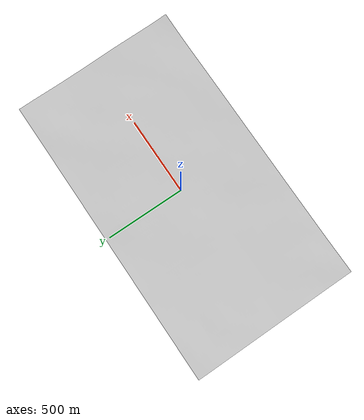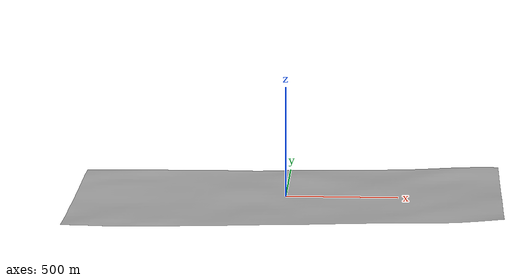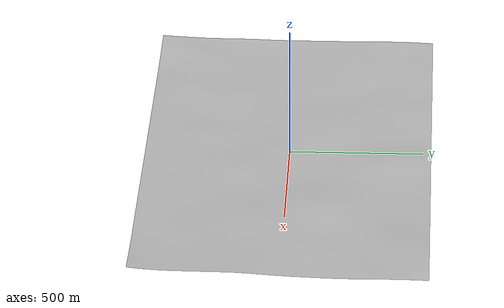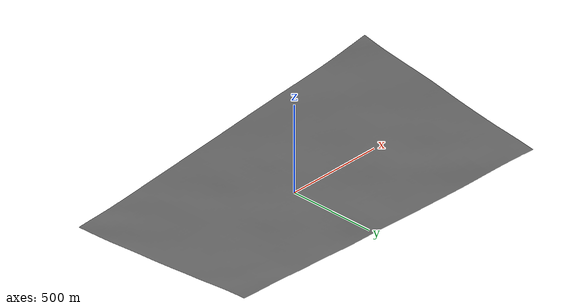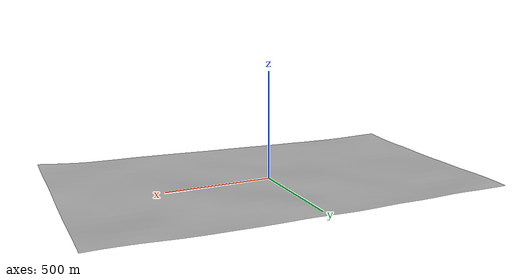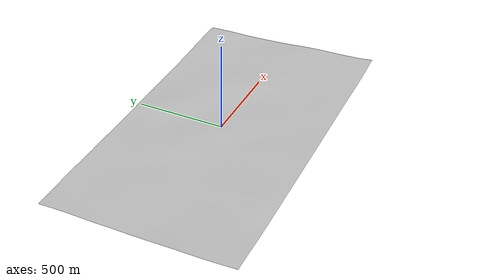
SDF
<?xml version="1.0" ?>
<sdf version="1.4">
  <model name="p4">
	<static>true</static>
	<link name="link">
	  <pose>0 0 10.1 0 0 0</pose>
	    <collision name="my_collision">
		<geometry>
                   <mesh><uri>model://p4/untitled.dae</uri></mesh>
		 </geometry>
	    </collision>

	    <visual name="my_visual">
		<geometry>
                   <mesh><uri>model://p4/untitled.dae</uri></mesh>
		 </geometry>
	    </visual>
	</link>
</model>
</sdf>
